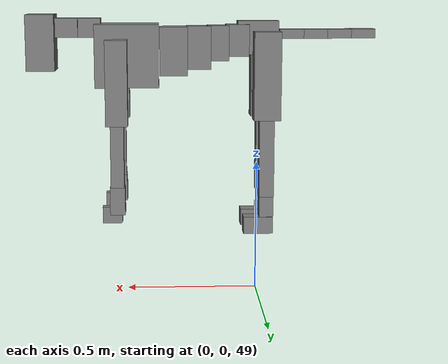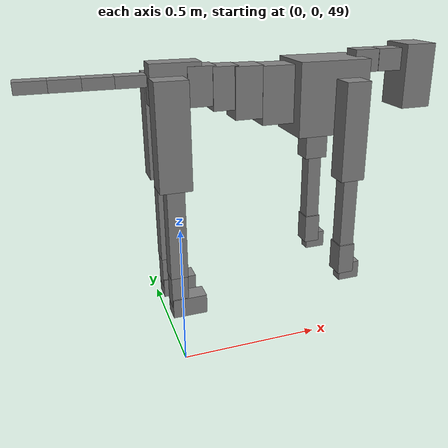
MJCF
<mujoco model="dog">

    <default>
        <joint armature="0.02" stiffness="1" damping="0.2" limited="true"/>
        <geom condim="3" friction="1 0.05 0.05" margin="0.01"/>
        <motor ctrllimited="true" ctrlrange="-1.0 1.0" forcelimited="true" gear="50"/>
    </default>

    <compiler inertiafromgeom="true" angle="radian"/>

    <option timestep="0.016" iterations="50" tolerance="1e-10" solver="Newton" jacobian="dense" cone="pyramidal"/>

    <size nconmax="20000" njmax="60000" nstack="5000000"/>
    <visual>
        <map force="0.1" zfar="30"/>
        <rgba haze="0.15 0.25 0.35 1"/>
        <quality shadowsize="2048"/>
        <global offwidth="800" offheight="800"/>
    </visual>

    <asset>
        <texture type="skybox" builtin="gradient" rgb1="0.3 0.5 0.7" rgb2="0 0 0" width="512" height="512"/>
        <texture name="texplane" type="2d" builtin="checker" rgb1=".2 .3 .4" rgb2=".1 0.15 0.2" width="512" height="512"
                 mark="cross" markrgb=".8 .8 .8"/>
        <texture name="texgeom" type="cube" builtin="flat" mark="cross" width="127" height="1278" rgb1="0.8 0.6 0.4"
                 rgb2="0.8 0.6 0.4" markrgb="1 1 1" random="0.01"/>

        <material name="matplane" reflectance="0.3" texture="texplane" texrepeat="1 1" texuniform="true"/>
        <material name="matgeom" texture="texgeom" texuniform="true" rgba="0.8 0.6 .4 1"/>
    </asset>

    <worldbody>
        <geom name="floor" pos="0 0 0" size="0 0 .25" type="plane" material="matplane" condim="3"/>

        <light directional="false" diffuse=".2 .2 .2" specular="0 0 0" pos="0 0 5" dir="0 0 -1" castshadow="false"/>
        <light mode="targetbodycom" target="torso" directional="false" diffuse=".8 .8 .8" specular="0.3 0.3 0.3"
               pos="0 0 4.0" dir="0 0 -1"/>

        <body name="root" pos="0 0 50">
            <freejoint name="root_1"/>
            <geom type="box" pos="0 0 -0.02" size="0.0774  0.0358  0.063" density="2030"/>

            <body name="spine1" pos="0.054 0 0">
                <joint name="spine1_y" axis="0 1 0" range="0 0.7" limited="true"/>
                <geom type="box" pos="0.02375 0 -0.03" size="0.04375  0.0375  0.05985" density="2030"/>

                <body name="spine2" pos="0.0612 0 0">
                    <joint name="spine2_y" axis="0 1 0" range="-0.15 0.15" limited="true"/>
                    <geom type="box" pos="0.03555  0  -0.04" size="0.04055  0.039  0.06615" density="2030"/>

                    <body name="spine3" pos="0.0730 0 0">
                        <joint name="spine3_y" axis="0 1 0" range="-0.15 0.15" limited="true"/>
                        <geom type="box" pos="0.03555  0  -0.057" size="0.04555  0.0445  0.081" density="2030"/>

                        <body name="spine4" pos="0.0780 0 0">
                            <joint name="spine4_y" axis="0 1 0" range="-0.15 0.15" limited="true"/>
                            <geom type="box" pos="0.05265  0  -0.07" size="0.05265  0.045  0.09135" density="2030"/>

                            <body name="torso" pos="0.1082 0 0">
                                <joint name="torso_y" axis="0 1 0" range="-0.15 0.15" limited="true"/>
                                <geom type="box" pos="0.11925  0  -0.085" size="0.11925  0.085  0.11745"
                                      density="2030"/>

                                <body name="neck1" pos="0.2160  0   0.0180">
                                    <joint name="neck1_y" axis="0 1 0" range="-1.2  -1" limited="true"/>
                                    <geom type="box" pos="0.0423  0  0" size="0.0423  0.03  0.036" density="2325"/>

                                    <body name="neck2" pos="0.0853  0  0">
                                        <joint name="neck2_y" axis="0 1 0" range="0.1  0" limited="true"/>
                                        <geom type="box" pos="0.0423  0  0" size="0.0423  0.03  0.036" density="2325"/>

                                        <body name="head" pos="0.0853  0  0">
                                            <joint name="head_y" axis="0 1 0" range="-0.3  -0.2" limited="true"/>
                                            <geom type="box" pos="0.0531  0  -0.055" size="0.0531  0.06  0.1044"
                                                  density="4030"/>

                                        </body>
                                    </body>
                                </body>

                                <body name="front_shoulder" pos="0.156  0   -0.0480">
                                    <joint name="front_shoulder_y" axis="0 1 0" range="-1 1.5" limited="true"/>
                                    <geom type="box" pos="0 0.13 -0.1310" size="0.0406  0.0347  0.1577" density="1158"/>
                                    <geom type="box" pos="0 -0.13 -0.1310" size="0.0406  0.0347  0.1577"
                                          density="1158"/>

                                    <body name="front_elbow" pos="0  0  -0.2620">
                                        <joint name="front_elbow_y" axis="0 1 0" range="-2 0" limited="true"/>
                                        <geom type="box" pos="0 0.13 -0.1343" size="0.0248  0.0253  0.1343"
                                              density="1081"/>
                                        <geom type="box" pos="0 -0.13 -0.1343" size="0.0248  0.0253  0.1343"
                                              density="1081"/>

                                        <body name="front_wrist" pos="0  0  -0.2687">
                                            <joint name="front_wrist_y" axis="0 1 0" range="-0.2 0" limited="true"/>
                                            <geom type="box" pos="0 0.13 -0.0381" size="0.0279  0.0309  0.0512"
                                                  density="1664"/>
                                            <geom type="box" pos="0 -0.13 -0.0381" size="0.0279  0.0309  0.0512"
                                                  density="1664"/>

                                            <body name="front_finger_end" pos="0  0  -0.0762">
                                                <joint name="front_finger_y" axis="0 1 0" range="-0.4 1"
                                                       limited="true"/>
                                                <geom type="box" pos="0.0198  0.13  -0.0152"
                                                      size="0.0363  0.0198  0.0302" density="1515"/>
                                                <geom type="box" pos="0.0198  -0.13  -0.0152"
                                                      size="0.0363  0.0198  0.0302" density="1515"/>

                                            </body>

                                        </body>
                                    </body>
                                </body>

                            </body>
                        </body>
                    </body>
                </body>
            </body>

            <body name="back_hip" pos="-0.03 0 -0.018">
                <joint name="back_hip_y" axis="0 1 0" range="-1.5 0.3" limited="true"/>
                <geom type="box" pos="0 0.07 -0.1420" size="0.0505  0.0396  0.1648" density="1154"/>
                <geom type="box" pos="0 -0.07 -0.1420" size="0.0505  0.0396  0.1648" density="1154"/>

                <body name="back_knee" pos="0  0  -0.2839">
                    <joint name="back_knee_y" axis="0 1 0" range="0 2.8" limited="true"/>
                    <geom type="box" pos="0 0.07 -0.1506" size="0.0279  0.0275  0.1662" density="1227"/>
                    <geom type="box" pos="0 -0.07 -0.1506" size="0.0279  0.0275  0.1662" density="1227"/>

                    <body name="back_ankle" pos="0  0  -0.3013">
                        <joint name="back_ankle_y" axis="0 1 0" range="-2.2 0" limited="true"/>
                        <geom type="box" pos="0 0.07 -0.0536" size="0.0264  0.0264  0.0649" density="1284"/>
                        <geom type="box" pos="0 -0.07 -0.0536" size="0.0264  0.0264  0.0649" density="1284"/>

                        <body name="back_toe_end" pos="0  0  -0.1073">
                            <joint name="back_toe_y" axis="0 1 0" range="-0.4 1" limited="true"/>
                            <geom type="box" pos="0.0304  0.07  -0.0170" size="0.0557  0.0304  0.0320" density="1515"/>
                            <geom type="box" pos="0.0304  -0.07  -0.0170" size="0.0557  0.0304  0.0320" density="1515"/>

                        </body>
                    </body>
                </body>
            </body>

            <body name="tail1" pos="-0.074 0 -0.006">
                <joint name="tail1_y" axis="0 1 0" range="-0.2 0.2" limited="true"/>
                <geom type="box" pos="-0.0536  0  0" size="0.045  0.025  0.0175" density="1587"/>

                <body name="tail2" pos="-0.09 0 0">
                    <joint name="tail2_y" axis="0 1 0" range="-0.2 0.2" limited="true"/>
                    <geom type="box" pos="-0.0536  0  0" size="0.045  0.025  0.0175" density="1587"/>

                    <body name="tail3" pos="-0.09 0 0">
                        <joint name="tail3_y" axis="0 1 0" range="-0.2 0.2" limited="true"/>
                        <geom type="box" pos="-0.0536  0  0" size="0.045  0.025  0.0175" density="1587"/>

                        <body name="tail4" pos="-0.09 0 0">
                            <joint name="tail4_y" axis="0 1 0" range="-0.2 0.2" limited="true"/>
                            <geom type="box" pos="-0.0536  0  0" size="0.045  0.025  0.0175" density="1587"/>

                        </body>
                    </body>
                </body>
            </body>
        </body>
    </worldbody>

    <actuator>
        <motor joint="spine1_y" forcerange="-150 150     "/>
        <motor joint="spine2_y" forcerange="-150 150     "/>
        <motor joint="spine3_y" forcerange="-150 150     "/>
        <motor joint="spine4_y" forcerange="-150 150     "/>
        <motor joint="torso_y" forcerange="-150 150     "/>
        <motor joint="neck1_y" forcerange="-100 100       "/>
        <motor joint="neck2_y" forcerange="-100 100       "/>
        <motor joint="head_y" forcerange="-150 150       "/>
        <motor joint="front_shoulder_y" forcerange="-133.13 198.38"/>
        <motor joint="front_elbow_y" forcerange="-129.46 154.89"/>
        <motor joint="front_wrist_y" forcerange="-140.45 107.13"/>
        <motor joint="front_finger_y" forcerange="-37.47 28.12"/>
        <motor joint="back_hip_y" forcerange="-356.95 370.89"/>
        <motor joint="back_knee_y" forcerange="-301.05 298.99"/>
        <motor joint="back_angle_y" forcerange="-128.35 194.58"/>
        <motor joint="back_toe_y" forcerange="-42.54 120.69"/>
        <motor joint="tail1_y" forcerange="-50 50     "/>
        <motor joint="tail2_y" forcerange="-50 50     "/>
        <motor joint="tail3_y" forcerange="-50 50     "/>
        <motor joint="tail4_y" forcerange="-50 50     "/>
    </actuator>
</mujoco>
